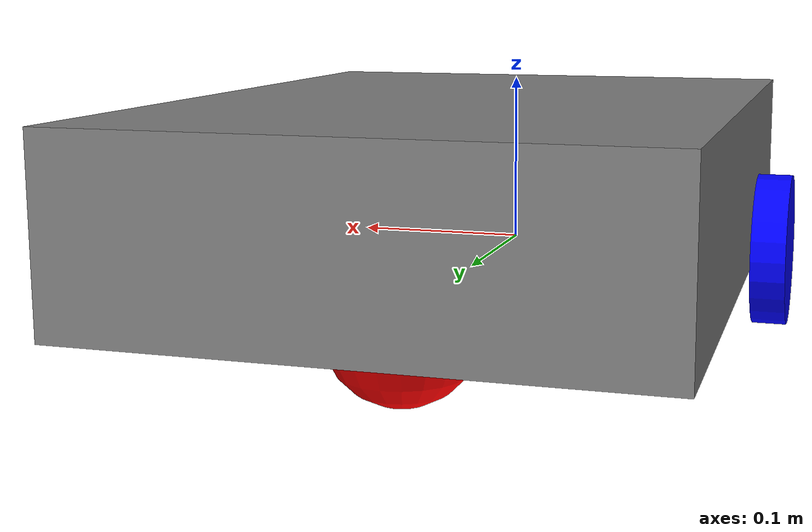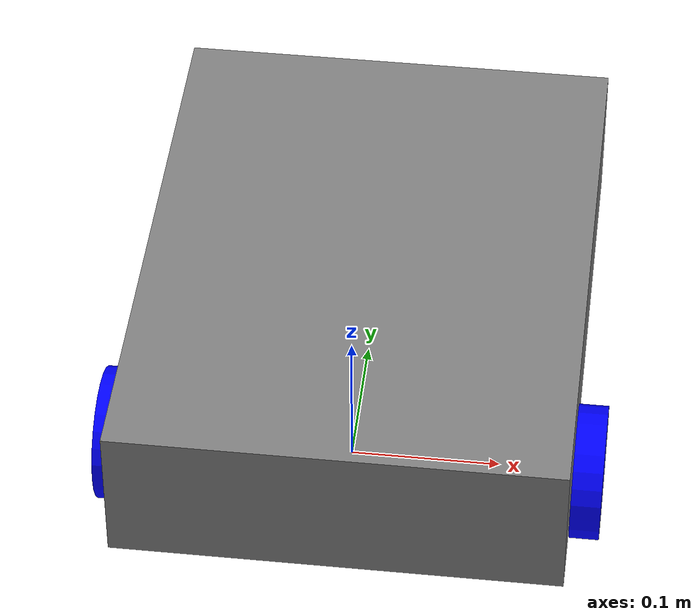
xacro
<?xml version="1.0"?>
<robot xmlns:xacro="http://www.ros.org/wiki/xacro"  name="robot_base">

    <!-- Include macros for inertial calculations -->
    <xacro:include filename="inertial_macros.xacro"/>

    <!-- Define parameters -->
    <xacro:property name="chassis_length" value="0.4"/>
    <xacro:property name="chassis_width" value="0.3"/>
    <xacro:property name="chassis_height" value="0.1"/>
    <xacro:property name="chassis_offset_y" value="0.1"/> <!-- Offset to make sure the baselink alings with the center of the wheels -->
    <xacro:property name="chassis_mass" value="4.0"/> <!-- Mass of the chassis in kg -->

    <xacro:property name="wheel_radius" value="0.045"/>
    <xacro:property name="wheel_width" value="0.02"/>
    <xacro:property name="wheel_offset_x" value="0.15"/>
    <xacro:property name="wheel_offset_y" value="0.08"/>
    <xacro:property name="wheel_mass" value="0.15"/>

    <xacro:property name="caster_wheel_offset_y" value="0.12"/> <!-- Offset for the caster wheel position -->
    <xacro:property name="caster_wheel_offset_z" value="0.03"/> <!-- Offset for the caster wheel position -->
    <xacro:property name="caster_wheel_mass" value="0.1"/> <!-- Mass of the caster wheel in kg -->
    <xacro:property name="caster_wheel_radius" value="0.04"/> <!-- Radius of the caster wheel -->

    <!-- Define colors -->
    <material name="blue">
        <color rgba="0 0 1 1"/>
    </material>

    <material name="red">
        <color rgba="1 0 0 1"/>
    </material>

    <material name="green">
        <color rgba="0 1 0 1"/>
    </material>

    <material name="yellow">
        <color rgba="1 1 0 1"/>
    </material>

    <material name="gray">
        <color rgba="0.5 0.5 0.5 1"/>
    </material>

    <!-- Base link -->
    <link name="base_link">
    </link>

    <!-- Base footprint link -->
    <joint name="base_footprint_joint" type="fixed">
        <parent link="base_link"/>
        <child link="base_footprint"/>
        <origin xyz="0 0 0" rpy="0 0 0"/>
    </joint>

    <link name="base_footprint">
    </link>

    <!-- Chassis link -->
    <joint name="chassis_joint" type="fixed">
        <parent link="base_link"/>
        <child link="chassis"/>
        <origin xyz="0 ${chassis_offset_y} ${wheel_radius}" rpy="0 0 0"/> <!-- Position the chassis above the base footprint -->
    </joint>

    <link name="chassis">
        <visual>
            <geometry>
                <box size="${chassis_width} ${chassis_length} ${chassis_height}"/> <!-- Length, width, height -->
            </geometry>
            <material name="gray"/>
        </visual>
        <collision>
            <geometry>
                <box size="${chassis_width} ${chassis_length} ${chassis_height}"/>
            </geometry>
        </collision>
        <xacro:inertial_box mass="${chassis_mass}" w="${chassis_width}" l="${chassis_length}" h="${chassis_height}"/>
    </link>

    <gazebo reference="gray">
        <material>Gazebo/Gray</material>
    </gazebo>

    <!-- Left wheel link -->
    <joint name="left_wheel_joint" type="continuous">
        <parent link="base_link"/>
        <child link="left_wheel"/>
        <origin xyz="${-(chassis_width/2+wheel_width/2)} 0 0" rpy="0 ${-pi/2} 0"/> <!-- Position the left wheel at the left side of the chassis -->
        <axis xyz="0 0 1"/> <!-- Rotate around the z-axis for a differential drive robot -->
    </joint>

    <link name="left_wheel">
        <visual>
            <geometry>
                <cylinder radius="${wheel_radius}" length="${wheel_width}"/>
            </geometry>
            <material name="blue"/>
        </visual>
        <collision>
            <geometry>
                <cylinder radius="${wheel_radius}" length="${wheel_width}"/>
            </geometry>
        </collision>
        <xacro:inertial_cylinder mass="${wheel_mass}" r="${wheel_radius}" l="${wheel_width}"/>
    </link>

    <!-- Right wheel link -->
    <joint name="right_wheel_joint" type="continuous">
        <parent link="base_link"/>
        <child link="right_wheel"/>
        <origin xyz="${(chassis_width/2+wheel_width/2)} 0 0" rpy="0 ${pi/2} 0"/> <!-- Position the right wheel at the right side of the chassis -->
        <axis xyz="0 0 -1"/> <!-- Rotate around the z-axis for a differential drive robot -->
    </joint>

    <link name="right_wheel">
        <visual>
            <geometry>
                <cylinder radius="${wheel_radius}" length="${wheel_width}"/>
            </geometry>
            <material name="blue"/>
        </visual>
        <collision>
            <geometry>
                <cylinder radius="${wheel_radius}" length="${wheel_width}"/>
            </geometry>
        </collision>
        <xacro:inertial_cylinder mass="${wheel_mass}" r="${wheel_radius}" l="${wheel_width}"/>
    </link>

    <!-- Caster wheel link -->
    <joint name="caster_wheel_joint" type="fixed">
        <parent link="chassis"/>
        <child link="caster_wheel"/>
        <origin xyz="0 ${caster_wheel_offset_y} ${-chassis_height/2}" rpy="0 0 0"/> <!-- Position the caster wheel at the back of the chassis -->
    </joint>

    <link name="caster_wheel">
        <visual>
            <geometry>
                <sphere radius="${caster_wheel_radius}"/>
            </geometry>
            <material name="red"/>
        </visual>
        <collision>
            <geometry>
                <sphere radius="${caster_wheel_radius}"/>
            </geometry>
        </collision>
        <xacro:inertial_sphere mass="${caster_wheel_mass}" r="${caster_wheel_radius}"/>
    </link>

</robot>
